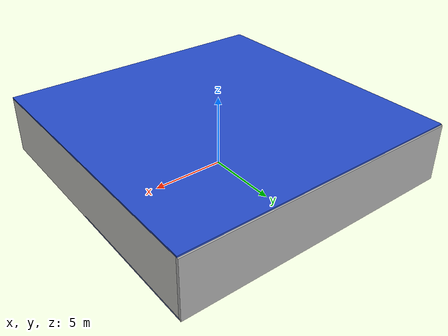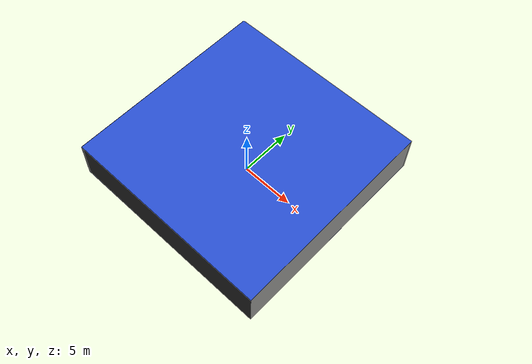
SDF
<sdf version="1.4">
 <world name="default">
  <physics type="ode">
   <max_step_size>0.001</max_step_size>
   <real_time_factor>1</real_time_factor>
   <real_time_update_rate>1000</real_time_update_rate>
   <gravity>0 0 -9.8</gravity>
  </physics>
  <scene><ambient>0.4 0.4 0.4 1</ambient><background>0.7 0.7 0.7 1</background><shadows>1</shadows></scene>
  <model name="Surrounding">
   <static>1</static>
   <link name="Ceiling">
    <collision name="Ceiling_Collision"><geometry><box><size>20 20 0.1</size></box></geometry></collision>
    <visual name="Ceiling_Visual">
     <geometry><box><size>20 20 0.1</size></box></geometry>
     <material>
      <script><uri>file://media/materials/scripts/gazebo.material</uri><name>Gazebo/BlueGlow</name></script>
     </material>
    </visual>
    <pose>0 0 4.05 0 0 0</pose>
   </link>
   <link name="Wall_South">
    <collision name="Wall_South_Collision">
     <geometry><box><size>20 0 4</size></box></geometry>
     <pose>0 0 2 0 -0 0</pose>
    </collision>
    <visual name="Wall_South_Visual">
     <pose>0 0 2 0 -0 0</pose>
     <geometry><box><size>20 0 4</size></box></geometry>
     <material>
      <script><uri>file://media/materials/scripts/gazebo.material</uri><name>Gazebo/FlatBlack</name></script>
     </material>
    </visual>
    <velocity_decay><linear>0</linear><angular>0</angular></velocity_decay>
    <pose>0 -10 0 0 -0 0</pose>
   </link>
   <link name="Wall_East">
    <collision name="Wall_21_Collision">
     <geometry><box><size>20 0 4</size></box></geometry>
     <pose>0 0 2 0 -0 0</pose>
    </collision>
    <visual name="Wall_21_Visual">
     <pose>0 0 2 0 -0 0</pose>
     <geometry><box><size>20 0 4</size></box></geometry>
     <material>
      <script><uri>file://media/materials/scripts/gazebo.material</uri><name>Gazebo/CeilingTiled</name></script>
     </material>
    </visual>
    <velocity_decay><linear>0</linear><angular>0</angular></velocity_decay>
    <pose>10 0 0 0 -0 1.5708</pose>
   </link>
   <link name="Wall_North">
    <collision name="Wall_22_Collision">
     <geometry><box><size>20 0.2 4</size></box></geometry>
     <pose>0 0 2 0 -0 0</pose>
    </collision>
    <visual name="Wall_22_Visual">
     <pose>0 0 2 0 -0 0</pose>
     <geometry><box><size>20 0.2 4</size></box></geometry>
     <material>
      <script><uri>file://media/materials/scripts/gazebo.material</uri><name>Gazebo/LightOn</name></script>
     </material>
    </visual>
    <velocity_decay><linear>0</linear><angular>0</angular></velocity_decay>
    <pose>0 10 0 0 -0 0</pose>
   </link>
   <link name="Wall_West">
    <collision name="Wall_23_Collision">
     <geometry><box><size>20 0.2 4</size></box></geometry>
     <pose>0 0 2 0 -0 0</pose>
    </collision>
    <visual name="Wall_23_Visual">
     <pose>0 0 2 0 -0 0</pose>
     <geometry><box><size>20 0.2 4</size></box></geometry>
     <material>
      <script><uri>file://media/materials/scripts/gazebo.material</uri><name>Gazebo/Black</name></script>
     </material>
    </visual>
    <velocity_decay><linear>0</linear><angular>0</angular></velocity_decay>
    <pose>-10 0 0 0 0 -1.5708</pose>
   </link>
   <link name="Ground_link">
    <collision name="collision">
     <pose>0 0 .05 0 -0 0</pose>
     <geometry><box><size>20 20 0.1</size></box></geometry>
    </collision>
    <visual name="visual">
     <pose>0 0 .05 0 -0 0</pose>
     <geometry><box><size>20 20 0.1</size></box></geometry>
     <material>
      <script><uri>file://media/materials/scripts/gazebo.material</uri><name>Gazebo/BlueTransparent</name></script>
     </material>
    </visual>
   </link>
   <static>1</static>
  </model>
  <spherical_coordinates>
   <surface_model>EARTH_WGS84</surface_model>
   <latitude_deg>0</latitude_deg>
   <longitude_deg>0</longitude_deg>
   <elevation>0</elevation>
   <heading_deg>0</heading_deg>
  </spherical_coordinates>
  <light name="lightball_0" type="diffuse">
   <diffuse>0.8 0.8 0.8 1</diffuse>
   <specular>0.2 0.2 0.2 1</specular>
   <attenuation>
    <range>100</range>
    <constant>0.7</constant>
    <linear>0.01</linear>
    <quadratic>0.001</quadratic>
   </attenuation>
   <direction>-0.5 0.1 -0.9</direction>
   <pose>-5.91772392946 -8.22576711611 2.82049148496 0 0 0</pose>
  </light>
  <light name="lightball_1" type="diffuse">
   <diffuse>0.8 0.8 0.8 1</diffuse>
   <specular>0.2 0.2 0.2 1</specular>
   <attenuation>
    <range>100</range>
    <constant>0.7</constant>
    <linear>0.01</linear>
    <quadratic>0.001</quadratic>
   </attenuation>
   <direction>-0.5 0.1 -0.9</direction>
   <pose>-5.79295233323 7.06609351007 2.62503700762 0 0 0</pose>
  </light>
  <light name="lightball_2" type="diffuse">
   <diffuse>0.8 0.8 0.8 1</diffuse>
   <specular>0.2 0.2 0.2 1</specular>
   <attenuation>
    <range>100</range>
    <constant>0.7</constant>
    <linear>0.01</linear>
    <quadratic>0.001</quadratic>
   </attenuation>
   <direction>-0.5 0.1 -0.9</direction>
   <pose>1.27582019916 -8.28713837512 1.46196577212 0 0 0</pose>
  </light>
  <light name="lightball_3" type="diffuse">
   <diffuse>0.8 0.8 0.8 1</diffuse>
   <specular>0.2 0.2 0.2 1</specular>
   <attenuation>
    <range>100</range>
    <constant>0.7</constant>
    <linear>0.01</linear>
    <quadratic>0.001</quadratic>
   </attenuation>
   <direction>-0.5 0.1 -0.9</direction>
   <pose>-4.30133846919 -8.34939680229 2.67853981417 0 0 0</pose>
  </light>
  <light name="lightball_4" type="diffuse">
   <diffuse>0.8 0.8 0.8 1</diffuse>
   <specular>0.2 0.2 0.2 1</specular>
   <attenuation>
    <range>100</range>
    <constant>0.7</constant>
    <linear>0.01</linear>
    <quadratic>0.001</quadratic>
   </attenuation>
   <direction>-0.5 0.1 -0.9</direction>
   <pose>-4.48307247684 -4.93314141651 2.96568363006 0 0 0</pose>
  </light>
  <light name="lightball_5" type="diffuse">
   <diffuse>0.8 0.8 0.8 1</diffuse>
   <specular>0.2 0.2 0.2 1</specular>
   <attenuation>
    <range>100</range>
    <constant>0.7</constant>
    <linear>0.01</linear>
    <quadratic>0.001</quadratic>
   </attenuation>
   <direction>-0.5 0.1 -0.9</direction>
   <pose>0.300581673769 -6.04488445156 2.5551365342 0 0 0</pose>
  </light>
  <light name="lightball_6" type="diffuse">
   <diffuse>0.8 0.8 0.8 1</diffuse>
   <specular>0.2 0.2 0.2 1</specular>
   <attenuation>
    <range>100</range>
    <constant>0.7</constant>
    <linear>0.01</linear>
    <quadratic>0.001</quadratic>
   </attenuation>
   <direction>-0.5 0.1 -0.9</direction>
   <pose>-8.21408715371 -6.14817935445 3.45306636051 0 0 0</pose>
  </light>
  <light name="lightball_7" type="diffuse">
   <diffuse>0.8 0.8 0.8 1</diffuse>
   <specular>0.2 0.2 0.2 1</specular>
   <attenuation>
    <range>100</range>
    <constant>0.7</constant>
    <linear>0.01</linear>
    <quadratic>0.001</quadratic>
   </attenuation>
   <direction>-0.5 0.1 -0.9</direction>
   <pose>-5.21383117359 3.8608835552 1.55242864542 0 0 0</pose>
  </light>
  <light name="lightball_8" type="diffuse">
   <diffuse>0.8 0.8 0.8 1</diffuse>
   <specular>0.2 0.2 0.2 1</specular>
   <attenuation>
    <range>100</range>
    <constant>0.7</constant>
    <linear>0.01</linear>
    <quadratic>0.001</quadratic>
   </attenuation>
   <direction>-0.5 0.1 -0.9</direction>
   <pose>1.43666084852 -2.9214934517 3.70420358161 0 0 0</pose>
  </light>
  <include><uri>model://cabinet</uri><pose>-5.31839539708 -5.3519754381 0 0 0 0.419916557157</pose></include>
  <include><uri>model://table</uri><pose>-2.55323244033 -6.53948665627 0 0 0 0.759468524332</pose></include>
  <include>
   <uri>model://textured_shapes</uri>
   <pose>-1.08319406408 -0.330299604024 0 0 0 2.70205813278</pose>
  </include>
  <include><uri>model://table</uri><pose>-2.66847094443 1.79538383531 0 0 0 1.90744418462</pose></include>
  <include><uri>model://cabinet</uri><pose>5.4476803118 4.28133050128 0 0 0 0.143172153125</pose></include>
  <include><uri>model://table</uri><pose>7.72595203467 1.78661024243 0 0 0 1.73609935641</pose></include>
  <include><uri>model://cabinet</uri><pose>6.3415153209 5.69547390327 0 0 0 1.86594611828</pose></include>
 </world>
</sdf>

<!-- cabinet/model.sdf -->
<sdf version="1.5">
  <model name="cabinet">
    <static>true</static>
    <link name="cabinet_bottom_plate">
      <inertial>
        <pose>0 0 -1 0 0 0</pose>
        <inertia>
          <ixx>2.050000</ixx>
          <ixy>0</ixy>
          <ixz>0</ixz>
          <iyy>2.050000</iyy>
          <iyz>0</iyz>
          <izz>2.050000</izz>
        </inertia>
        <mass>25.000000</mass>
      </inertial>
      <collision name="cabinet_bottom_plate_geom">
        <pose>0 0 0.010000 0 0 0</pose>
        <geometry>
          <box>
            <size>0.450000 0.450000 0.020000</size>
          </box>
        </geometry>
      </collision>
      <visual name="cabinet_bottom_plate_geom_visual">
        <pose>0 0 0.010000 0 0 0</pose>
        <geometry>
          <box>
            <size>0.450000 0.450000 0.020000</size>
          </box>
        </geometry>
        <material>
          <script>
            <uri>model://media/materials/scripts/gazebo.material</uri>
            <name>Gazebo/Wood</name>
          </script>
        </material>
      </visual>
      <collision name="cabinet_bottom_plate_geom_cabinet_back_plate">
        <pose>0.235000 0 0.510000 0 0 0</pose>
        <geometry>
          <box>
            <size>0.020000 0.450000 1.020000</size>
          </box>
        </geometry>
      </collision>
      <visual name="cabinet_bottom_plate_geom_cabinet_back_plate_visual">
        <pose>0.235000 0 0.510000 0 0 0</pose>
        <geometry>
          <box>
            <size>0.020000 0.450000 1.020000</size>
          </box>
        </geometry>
        <material>
          <script>
            <uri>model://media/materials/scripts/gazebo.material</uri>
            <name>Gazebo/Wood</name>
          </script>
        </material>
      </visual>
      <collision name="cabinet_bottom_plate_geom_cabinet_left_plate">
        <pose>0 0.235000 0.510000 0 0 0</pose>
        <geometry>
          <box>
            <size>0.450000 0.020000 1.020000</size>
          </box>
        </geometry>
      </collision>
      <visual name="cabinet_bottom_plate_geom_cabinet_left_plate_visual">
        <pose>0 0.235000 0.510000 0 0 0</pose>
        <geometry>
          <box>
            <size>0.450000 0.020000 1.020000</size>
          </box>
        </geometry>
        <material>
          <script>
            <uri>model://media/materials/scripts/gazebo.material</uri>
            <name>Gazebo/Wood</name>
          </script>
        </material>
      </visual>
      <collision name="cabinet_bottom_plate_geom_cabinet_middle_plate">
        <pose>0 0 0.510000 0 0 0</pose>
        <geometry>
          <box>
            <size>0.450000 0.450000 0.020000</size>
          </box>
        </geometry>
      </collision>
      <visual name="cabinet_bottom_plate_geom_cabinet_middle_plate_visual">
        <pose>0 0 0.510000 0 0 0</pose>
        <geometry>
          <box>
            <size>0.450000 0.450000 0.020000</size>
          </box>
        </geometry>
        <material>
          <script>
            <uri>model://media/materials/scripts/gazebo.material</uri>
            <name>Gazebo/Wood</name>
          </script>
        </material>
      </visual>
      <collision name="cabinet_bottom_plate_geom_cabinet_right_plate">
        <pose>0 -0.235000 0.510000 0 0 0</pose>
        <geometry>
          <box>
            <size>0.450000 0.020000 1.020000</size>
          </box>
        </geometry>
      </collision>
      <visual name="cabinet_bottom_plate_geom_cabinet_right_plate_visual">
        <pose>0 -0.235000 0.510000 0 0 0</pose>
        <geometry>
          <box>
            <size>0.450000 0.020000 1.020000</size>
          </box>
        </geometry>
        <material>
          <script>
            <uri>model://media/materials/scripts/gazebo.material</uri>
            <name>Gazebo/Wood</name>
          </script>
        </material>
      </visual>
      <collision name="cabinet_bottom_plate_geom_cabinet_top_plate">
        <pose>0 0 1.010000 0 0 0</pose>
        <geometry>
          <box>
            <size>0.450000 0.450000 0.020000</size>
          </box>
        </geometry>
      </collision>
      <visual name="cabinet_bottom_plate_geom_cabinet_top_plate_visual">
        <pose>0 0 1.010000 0 0 0</pose>
        <geometry>
          <box>
            <size>0.450000 0.450000 0.020000</size>
          </box>
        </geometry>
        <material>
          <script>
            <uri>model://media/materials/scripts/gazebo.material</uri>
            <name>Gazebo/Wood</name>
          </script>
        </material>
      </visual>
    </link>
  </model>
</sdf>

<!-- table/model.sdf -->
<sdf version="1.5">
  <model name="table">
    <static>true</static>
    <link name="link">
      <collision name="surface">
        <pose>0 0 1.0 0 0 0</pose>
        <geometry>
          <box>
            <size>1.5 0.8 0.03</size>
          </box>
        </geometry>
        <surface>
          <friction>
            <ode>
              <mu>0.6</mu>
              <mu2>0.6</mu2>
            </ode>
          </friction>
        </surface>
      </collision>
      <visual name="visual1">
        <pose>0 0 1.0 0 0 0</pose>
        <geometry>
          <box>
            <size>1.5 0.8 0.03</size>
          </box>
        </geometry>
        <material>
          <script>
            <uri>model://media/materials/scripts/gazebo.material</uri>
            <name>Gazebo/Wood</name>
          </script>
        </material>
      </visual>
      <collision name="front_left_leg">
        <pose>0.68 0.38 0.5 0 0 0</pose>
        <geometry>
          <cylinder>
            <radius>0.02</radius>
            <length>1.0</length>
          </cylinder>
        </geometry>
      </collision>
      <visual name="front_left_leg">
        <pose>0.68 0.38 0.5 0 0 0</pose>
        <geometry>
          <cylinder>
            <radius>0.02</radius>
            <length>1.0</length>
          </cylinder>
        </geometry>
        <material>
          <script>
            <uri>model://media/materials/scripts/gazebo.material</uri>
            <name>Gazebo/Grey</name>
          </script>
        </material>
      </visual>
      <collision name="front_right_leg">
        <pose>0.68 -0.38 0.5 0 0 0</pose>
        <geometry>
          <cylinder>
            <radius>0.02</radius>
            <length>1.0</length>
          </cylinder>
        </geometry>
      </collision>
      <visual name="front_right_leg">
        <pose>0.68 -0.38 0.5 0 0 0</pose>
        <geometry>
          <cylinder>
            <radius>0.02</radius>
            <length>1.0</length>
          </cylinder>
        </geometry>
        <material>
          <script>
            <uri>model://media/materials/scripts/gazebo.material</uri>
            <name>Gazebo/Grey</name>
          </script>
        </material>
      </visual>
      <collision name="back_right_leg">
        <pose>-0.68 -0.38 0.5 0 0 0</pose>
        <geometry>
          <cylinder>
            <radius>0.02</radius>
            <length>1.0</length>
          </cylinder>
        </geometry>
      </collision>
      <visual name="back_right_leg">
        <pose>-0.68 -0.38 0.5 0 0 0</pose>
        <geometry>
          <cylinder>
            <radius>0.02</radius>
            <length>1.0</length>
          </cylinder>
        </geometry>
        <material>
          <script>
            <uri>model://media/materials/scripts/gazebo.material</uri>
            <name>Gazebo/Grey</name>
          </script>
        </material>
      </visual>
      <collision name="back_left_leg">
        <pose>-0.68 0.38 0.5 0 0 0</pose>
        <geometry>
          <cylinder>
            <radius>0.02</radius>
            <length>1.0</length>
          </cylinder>
        </geometry>
      </collision>
      <visual name="back_left_leg">
        <pose>-0.68 0.38 0.5 0 0 0</pose>
        <geometry>
          <cylinder>
            <radius>0.02</radius>
            <length>1.0</length>
          </cylinder>
        </geometry>
        <material>
          <script>
            <uri>model://media/materials/scripts/gazebo.material</uri>
            <name>Gazebo/Grey</name>
          </script>
        </material>
      </visual>
    </link>
  </model>
</sdf>

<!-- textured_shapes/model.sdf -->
<sdf version="1.6">
  <model name="textured_shapes">
    <pose>0 0 0.5 0 0 0</pose>
    <link name="box">
      <pose>0 -1.5 0 0 0 0</pose>
      <collision name="collision">
        <geometry>
          <box>
            <size>1 1 1</size>
          </box>
        </geometry>
      </collision>
      <visual name="visual">
        <geometry>
          <box>
            <size>1 1 1</size>
          </box>
        </geometry>
        <material>
          <script>
            <uri>model://../model_source/models/textured_shapes/materials/scripts</uri>
            <uri>model://../model_source/models/textured_shapes/materials/textures</uri>
            <name>TexturedShape/Squares</name>
          </script>
        </material>
      </visual>
    </link>
    <link name="sphere">
      <collision name="collision">
        <geometry>
          <sphere>
            <radius>0.5</radius>
          </sphere>
        </geometry>
      </collision>
      <visual name="visual">
        <geometry>
          <sphere>
            <radius>0.5</radius>
          </sphere>
        </geometry>
        <material>
          <script>
            <uri>model://../model_source/models/textured_shapes/materials/scripts</uri>
            <uri>model://../model_source/models/textured_shapes/materials/textures</uri>
            <name>TexturedShape/Squares</name>
          </script>
        </material>
      </visual>
    </link>
    <link name="cylinder">
      <pose>0 1.5 0 0 0 0</pose>
      <collision name="collision">
        <geometry>
          <cylinder>
            <radius>0.5</radius>
            <length>1</length>
          </cylinder>
        </geometry>
      </collision>
      <visual name="visual">
        <geometry>
          <cylinder>
            <radius>0.5</radius>
            <length>1</length>
          </cylinder>
        </geometry>
        <material>
          <script>
            <uri>model://../model_source/models/textured_shapes/materials/scripts</uri>
            <uri>model://../model_source/models/textured_shapes/materials/textures</uri>
            <name>TexturedShape/Squares</name>
          </script>
        </material>
      </visual>
    </link>
  </model>
</sdf>
